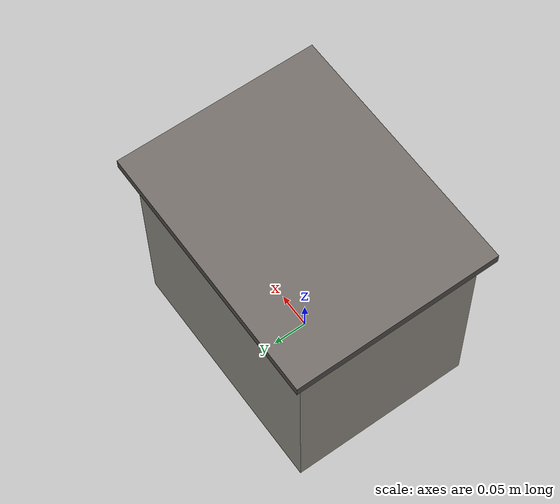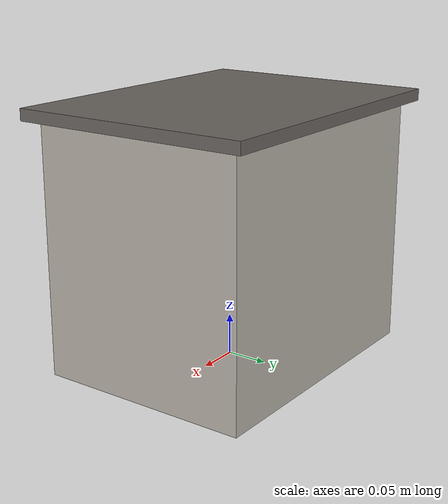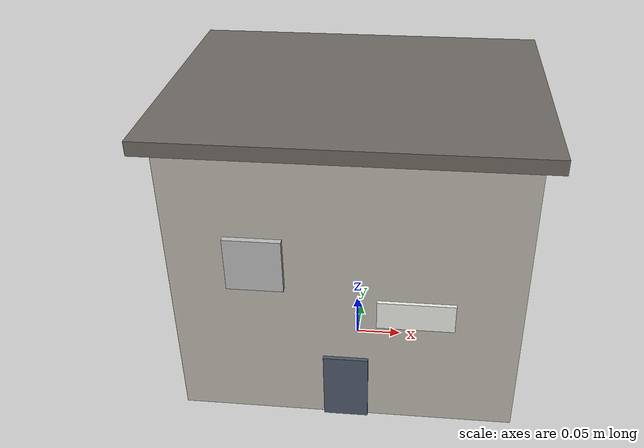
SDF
<?xml version="1.0"?>
<sdf version="1.7">
  <model name="station">
    <static>true</static>
    <link name="link">
<visual name="hut"><pose>0 0 0.1500 0 0 0</pose><geometry><box><size>0.340 0.260 0.300</size></box></geometry><material><ambient>0.72 0.70 0.66 1</ambient><diffuse>0.72 0.70 0.66 1</diffuse></material></visual>
      <collision name="hut_c_c"><pose>0 0 0.1500 0 0 0</pose><geometry><box><size>0.340 0.260 0.300</size></box></geometry></collision>
      <visual name="roof"><pose>0 0 0.3070 0 0 0</pose><geometry><box><size>0.370 0.290 0.014</size></box></geometry><material><ambient>0.42 0.40 0.38 1</ambient><diffuse>0.42 0.40 0.38 1</diffuse></material></visual>
      <visual name="door"><pose>0 -0.1320 0.0380 0 0 0</pose><geometry><box><size>0.045 0.004 0.075</size></box></geometry><material><ambient>0.30 0.34 0.40 1</ambient><diffuse>0.30 0.34 0.40 1</diffuse></material></visual>
      <visual name="gauge"><pose>-0.0850 -0.1340 0.1860 0 0 0</pose><geometry><box><size>0.055 0.006 0.055</size></box></geometry><material><script><uri>model://station/materials/scripts</uri><uri>model://station/materials/textures</uri><name>Gauge</name></script></material></visual>
      <collision name="gauge_c_c"><pose>-0.0850 -0.1340 0.1860 0 0 0</pose><geometry><box><size>0.055 0.006 0.055</size></box></geometry></collision>
      <visual name="plate"><pose>0.0680 -0.1330 0.1350 0 0 0</pose><geometry><box><size>0.075 0.004 0.03</size></box></geometry><material><ambient>0.90 0.90 0.88 1</ambient><diffuse>0.90 0.90 0.88 1</diffuse></material></visual>
    </link>
  </model>
</sdf>
